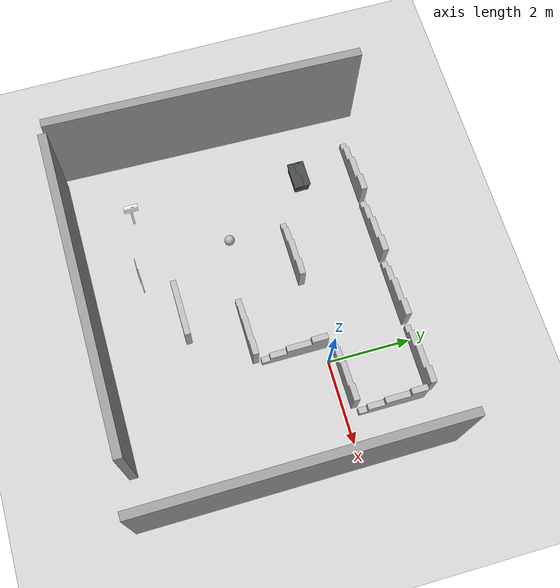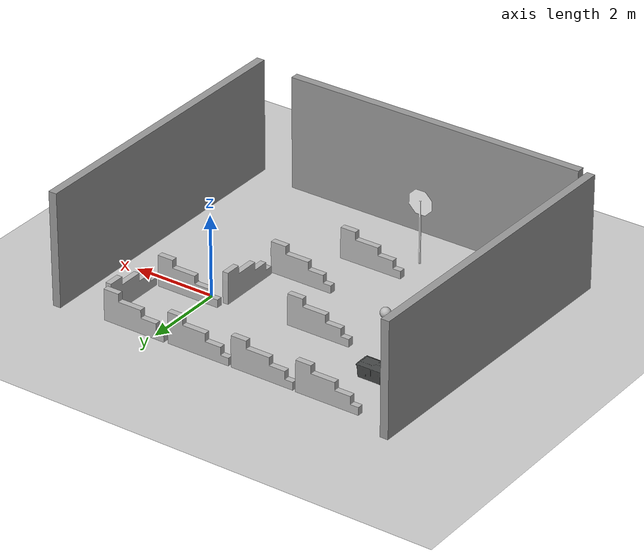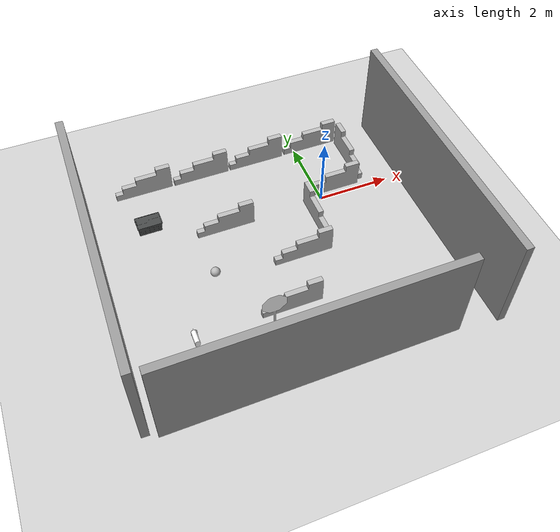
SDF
<sdf version="1.6">
 <world name="default">
  <light name="sun" type="directional">
   <pose>0 0 10 0 -0 0</pose>
   <diffuse>0.8 0.8 0.8 1</diffuse>
   <specular>0.1 0.1 0.1 1</specular>
   <attenuation>
    <range>1000</range>
    <constant>0.9</constant>
    <linear>0.01</linear>
    <quadratic>0.001</quadratic>
   </attenuation>
   <direction>-0.5 0.5 -1</direction>
  </light>
  <model name="ground_plane">
   <static>1</static>
   <link name="link">
    <collision name="collision">
     <geometry><plane><normal>0 0 1</normal><size>100 100</size></plane></geometry>
     <surface><friction><ode><mu>100</mu><mu2>50</mu2></ode></friction></surface>
    </collision>
    <visual name="visual">
     <cast_shadows>0</cast_shadows>
     <geometry><plane><normal>0 0 1</normal><size>100 100</size></plane></geometry>
     <material>
      <script><uri>file://media/materials/scripts/gazebo.material</uri><name>Gazebo/Grey</name></script>
     </material>
    </visual>
   </link>
  </model>
  <physics name="default_physics" default="0" type="ode">
   <real_time_update_rate>1000</real_time_update_rate>
   <max_step_size>0.001</max_step_size>
   <real_time_factor>1</real_time_factor>
   <ode>
    <solver>
     <type>quick</type>
     <iters>150</iters>
     <precon_iters>0</precon_iters>
     <sor>1.4</sor>
     <use_dynamic_moi_rescaling>1</use_dynamic_moi_rescaling>
    </solver>
    <constraints>
     <cfm>1e-05</cfm>
     <erp>0.2</erp>
     <contact_max_correcting_vel>2000</contact_max_correcting_vel>
     <contact_surface_layer>0.01</contact_surface_layer>
    </constraints>
   </ode>
  </physics>
  <scene><ambient>0.4 0.4 0.4 1</ambient><background>0.7 0.7 0.7 1</background><shadows>1</shadows></scene>
  <gravity>0 0 -9.8</gravity>
  <magnetic_field>6e-06 2.3e-05 -4.2e-05</magnetic_field>
  <atmosphere type="adiabatic"/>
  <spherical_coordinates>
   <surface_model>EARTH_WGS84</surface_model>
   <latitude_deg>0</latitude_deg>
   <longitude_deg>0</longitude_deg>
   <elevation>0</elevation>
   <heading_deg>0</heading_deg>
  </spherical_coordinates>
  <model name="block_wall">
   <pose>-2.66762 -0.046845 0.30924 0 -0 0</pose>
   <static>1</static>
   <link name="blocks">
    <collision name="collision">
     <geometry>
      <mesh><uri>model://drc_practice_block_wall/meshes/block_wall.dae</uri><scale>1 1 1</scale></mesh>
     </geometry>
     <surface>
      <bounce><restitution_coefficient>0</restitution_coefficient><threshold>100000</threshold></bounce>
      <friction><ode><mu>100</mu><mu2>50</mu2></ode></friction>
      <contact>
       <ode><soft_cfm>0</soft_cfm><soft_erp>0.2</soft_erp><max_vel>0</max_vel><min_depth>0</min_depth></ode>
      </contact>
     </surface>
    </collision>
    <visual name="visual">
     <geometry>
      <mesh><uri>model://drc_practice_block_wall/meshes/block_wall.dae</uri><scale>1 1 1</scale></mesh>
     </geometry>
    </visual>
   </link>
  </model>
  <model name="block_wall_0">
   <pose>-2.70173 2.0152 0.30924 0 -0 0</pose>
   <static>1</static>
   <link name="blocks">
    <collision name="collision">
     <geometry>
      <mesh><uri>model://drc_practice_block_wall/meshes/block_wall.dae</uri><scale>1 1 1</scale></mesh>
     </geometry>
     <surface>
      <bounce><restitution_coefficient>0</restitution_coefficient><threshold>100000</threshold></bounce>
      <friction><ode><mu>100</mu><mu2>50</mu2></ode></friction>
      <contact>
       <ode><soft_cfm>0</soft_cfm><soft_erp>0.2</soft_erp><max_vel>0</max_vel><min_depth>0</min_depth></ode>
      </contact>
     </surface>
    </collision>
    <visual name="visual">
     <geometry>
      <mesh><uri>model://drc_practice_block_wall/meshes/block_wall.dae</uri><scale>1 1 1</scale></mesh>
     </geometry>
    </visual>
   </link>
  </model>
  <model name="block_wall_1">
   <pose>-1.04917 2.0152 0.30924 0 -0 0</pose>
   <static>1</static>
   <link name="blocks">
    <collision name="collision">
     <geometry>
      <mesh><uri>model://drc_practice_block_wall/meshes/block_wall.dae</uri><scale>1 1 1</scale></mesh>
     </geometry>
     <surface>
      <bounce><restitution_coefficient>0</restitution_coefficient><threshold>100000</threshold></bounce>
      <friction><ode><mu>100</mu><mu2>50</mu2></ode></friction>
      <contact>
       <ode><soft_cfm>0</soft_cfm><soft_erp>0.2</soft_erp><max_vel>0</max_vel><min_depth>0</min_depth></ode>
      </contact>
     </surface>
    </collision>
    <visual name="visual">
     <geometry>
      <mesh><uri>model://drc_practice_block_wall/meshes/block_wall.dae</uri><scale>1 1 1</scale></mesh>
     </geometry>
    </visual>
   </link>
  </model>
  <model name="block_wall_2">
   <pose>0.627625 2.03818 0.30924 0 -0 0</pose>
   <static>1</static>
   <link name="blocks">
    <collision name="collision">
     <geometry>
      <mesh><uri>model://drc_practice_block_wall/meshes/block_wall.dae</uri><scale>1 1 1</scale></mesh>
     </geometry>
     <surface>
      <bounce><restitution_coefficient>0</restitution_coefficient><threshold>100000</threshold></bounce>
      <friction><ode><mu>100</mu><mu2>50</mu2></ode></friction>
      <contact>
       <ode><soft_cfm>0</soft_cfm><soft_erp>0.2</soft_erp><max_vel>0</max_vel><min_depth>0</min_depth></ode>
      </contact>
     </surface>
    </collision>
    <visual name="visual">
     <geometry>
      <mesh><uri>model://drc_practice_block_wall/meshes/block_wall.dae</uri><scale>1 1 1</scale></mesh>
     </geometry>
    </visual>
   </link>
  </model>
  <model name="block_wall_3">
   <pose>1.32556 1.23341 0.30924 0 -0 1.57115</pose>
   <static>1</static>
   <link name="blocks">
    <collision name="collision">
     <geometry>
      <mesh><uri>model://drc_practice_block_wall/meshes/block_wall.dae</uri><scale>1 1 1</scale></mesh>
     </geometry>
     <surface>
      <bounce><restitution_coefficient>0</restitution_coefficient><threshold>100000</threshold></bounce>
      <friction><ode><mu>100</mu><mu2>50</mu2></ode></friction>
      <contact>
       <ode><soft_cfm>0</soft_cfm><soft_erp>0.2</soft_erp><max_vel>0</max_vel><min_depth>0</min_depth></ode>
      </contact>
     </surface>
    </collision>
    <visual name="visual">
     <geometry>
      <mesh><uri>model://drc_practice_block_wall/meshes/block_wall.dae</uri><scale>1 1 1</scale></mesh>
     </geometry>
    </visual>
   </link>
  </model>
  <model name="block_wall_4">
   <pose>0.550133 0.24396 0.30924 0 -0 0</pose>
   <static>1</static>
   <link name="blocks">
    <collision name="collision">
     <geometry>
      <mesh><uri>model://drc_practice_block_wall/meshes/block_wall.dae</uri><scale>1 1 1</scale></mesh>
     </geometry>
     <surface>
      <bounce><restitution_coefficient>0</restitution_coefficient><threshold>100000</threshold></bounce>
      <friction><ode><mu>100</mu><mu2>50</mu2></ode></friction>
      <contact>
       <ode><soft_cfm>0</soft_cfm><soft_erp>0.2</soft_erp><max_vel>0</max_vel><min_depth>0</min_depth></ode>
      </contact>
     </surface>
    </collision>
    <visual name="visual">
     <geometry>
      <mesh><uri>model://drc_practice_block_wall/meshes/block_wall.dae</uri><scale>1 1 1</scale></mesh>
     </geometry>
    </visual>
   </link>
  </model>
  <model name="block_wall_5">
   <pose>-1.08718 -1.63895 0.30924 0 -0 0</pose>
   <static>1</static>
   <link name="blocks">
    <collision name="collision">
     <geometry>
      <mesh><uri>model://drc_practice_block_wall/meshes/block_wall.dae</uri><scale>1 1 1</scale></mesh>
     </geometry>
     <surface>
      <bounce><restitution_coefficient>0</restitution_coefficient><threshold>100000</threshold></bounce>
      <friction><ode><mu>100</mu><mu2>50</mu2></ode></friction>
      <contact>
       <ode><soft_cfm>0</soft_cfm><soft_erp>0.2</soft_erp><max_vel>0</max_vel><min_depth>0</min_depth></ode>
      </contact>
     </surface>
    </collision>
    <visual name="visual">
     <geometry>
      <mesh><uri>model://drc_practice_block_wall/meshes/block_wall.dae</uri><scale>1 1 1</scale></mesh>
     </geometry>
    </visual>
   </link>
  </model>
  <model name="block_wall_6">
   <pose>-0.427056 -0.570401 0.30924 0 -0 1.5723</pose>
   <static>1</static>
   <link name="blocks">
    <collision name="collision">
     <geometry>
      <mesh><uri>model://drc_practice_block_wall/meshes/block_wall.dae</uri><scale>1 1 1</scale></mesh>
     </geometry>
     <surface>
      <bounce><restitution_coefficient>0</restitution_coefficient><threshold>100000</threshold></bounce>
      <friction><ode><mu>100</mu><mu2>50</mu2></ode></friction>
      <contact>
       <ode><soft_cfm>0</soft_cfm><soft_erp>0.2</soft_erp><max_vel>0</max_vel><min_depth>0</min_depth></ode>
      </contact>
     </surface>
    </collision>
    <visual name="visual">
     <geometry>
      <mesh><uri>model://drc_practice_block_wall/meshes/block_wall.dae</uri><scale>1 1 1</scale></mesh>
     </geometry>
    </visual>
   </link>
  </model>
  <model name="block_wall_7">
   <pose>-1.96564 -3.01521 0.30924 0 -0 0</pose>
   <static>1</static>
   <link name="blocks">
    <collision name="collision">
     <geometry>
      <mesh><uri>model://drc_practice_block_wall/meshes/block_wall.dae</uri><scale>1 1 1</scale></mesh>
     </geometry>
     <surface>
      <bounce><restitution_coefficient>0</restitution_coefficient><threshold>100000</threshold></bounce>
      <friction><ode><mu>100</mu><mu2>50</mu2></ode></friction>
      <contact>
       <ode><soft_cfm>0</soft_cfm><soft_erp>0.2</soft_erp><max_vel>0</max_vel><min_depth>0</min_depth></ode>
      </contact>
     </surface>
    </collision>
    <visual name="visual">
     <geometry>
      <mesh><uri>model://drc_practice_block_wall/meshes/block_wall.dae</uri><scale>1 1 1</scale></mesh>
     </geometry>
    </visual>
   </link>
  </model>
  <model name="block_wall_8">
   <pose>-4.36037 2.02738 0.30924 0 -0 0</pose>
   <static>1</static>
   <link name="blocks">
    <collision name="collision">
     <geometry>
      <mesh><uri>model://drc_practice_block_wall/meshes/block_wall.dae</uri><scale>1 1 1</scale></mesh>
     </geometry>
     <surface>
      <bounce><restitution_coefficient>0</restitution_coefficient><threshold>100000</threshold></bounce>
      <friction><ode><mu>100</mu><mu2>50</mu2></ode></friction>
      <contact>
       <ode><soft_cfm>0</soft_cfm><soft_erp>0.2</soft_erp><max_vel>0</max_vel><min_depth>0</min_depth></ode>
      </contact>
     </surface>
    </collision>
    <visual name="visual">
     <geometry>
      <mesh><uri>model://drc_practice_block_wall/meshes/block_wall.dae</uri><scale>1 1 1</scale></mesh>
     </geometry>
    </visual>
   </link>
  </model>
  <model name="frc2016_ball">
   <pose>-3.56249 -1.41984 0.127 0 -0 0</pose>
   <link name="link">
    <inertial>
     <mass>0.213</mass>
     <inertia>
      <ixx>0.00322667</ixx>
      <ixy>0</ixy>
      <ixz>0</ixz>
      <iyy>0.00322667</iyy>
      <iyz>0</iyz>
      <izz>0.00322667</izz>
     </inertia>
    </inertial>
    <visual name="visual"><geometry><sphere><radius>0.127</radius></sphere></geometry></visual>
    <collision name="collision">
     <geometry><sphere><radius>0.127</radius></sphere></geometry>
     <surface>
      <bounce><restitution_coefficient>0.15937</restitution_coefficient><threshold>0</threshold></bounce>
      <contact><ode><max_vel>100</max_vel><min_depth>0.001</min_depth></ode></contact>
     </surface>
    </collision>
   </link>
  </model>
  <model name="grey_wall">
   <static>1</static>
   <link name="link">
    <pose>0 0 1.4 0 -0 0</pose>
    <collision name="collision"><geometry><box><size>7.5 0.2 2.8</size></box></geometry></collision>
    <visual name="visual">
     <cast_shadows>0</cast_shadows>
     <geometry><box><size>7.5 0.2 2.8</size></box></geometry>
     <material>
      <script>
       <uri>model://grey_wall/materials/scripts</uri>
       <uri>model://grey_wall/materials/textures</uri>
       <name>vrc/grey_wall</name>
      </script>
     </material>
    </visual>
   </link>
   <pose>-6.29542 -1.24159 0 0 -0 1.54899</pose>
  </model>
  <model name="grey_wall_0">
   <static>1</static>
   <link name="link">
    <pose>0 0 1.4 0 -0 0</pose>
    <collision name="collision"><geometry><box><size>7.5 0.2 2.8</size></box></geometry></collision>
    <visual name="visual">
     <cast_shadows>0</cast_shadows>
     <geometry><box><size>7.5 0.2 2.8</size></box></geometry>
     <material>
      <script>
       <uri>model://grey_wall/materials/scripts</uri>
       <uri>model://grey_wall/materials/textures</uri>
       <name>vrc/grey_wall</name>
      </script>
     </material>
    </visual>
   </link>
   <pose>-2.35784 -5.0137 0 0 -0 0</pose>
  </model>
  <model name="Mailbox">
   <link name="link">
    <collision name="collision">
     <geometry><mesh><uri>model://mailbox/meshes/mailbox.dae</uri><scale>1 1 1</scale></mesh></geometry>
    </collision>
    <visual name="visual">
     <geometry><mesh><uri>model://mailbox/meshes/mailbox.dae</uri><scale>1 1 1</scale></mesh></geometry>
     <material>
      <script>
       <uri>model://mailbox/materials/scripts</uri>
       <uri>model://mailbox/materials/textures</uri>
       <name>Mailbox/Diffuse</name>
      </script>
     </material>
    </visual>
    <inertial>
     <inertia><ixx>1</ixx><ixy>0</ixy><ixz>0</ixz><iyy>1</iyy><iyz>0</iyz><izz>1</izz></inertia>
     <mass>1</mass>
    </inertial>
   </link>
   <pose>-4.70009 -3.55261 0 -3e-06 -4e-06 -0</pose>
  </model>
  <model name="Stop Sign">
   <link name="link">
    <collision name="collision">
     <geometry><mesh><uri>model://stop_sign/meshes/stop_sign.dae</uri><scale>1 1 1</scale></mesh></geometry>
    </collision>
    <visual name="visual">
     <geometry><mesh><uri>model://stop_sign/meshes/stop_sign.dae</uri><scale>1 1 1</scale></mesh></geometry>
     <material>
      <script>
       <uri>model://stop_sign/materials/scripts</uri>
       <uri>model://stop_sign/materials/textures</uri>
       <name>StopSign/Diffuse</name>
      </script>
     </material>
    </visual>
    <inertial>
     <inertia><ixx>1</ixx><ixy>0</ixy><ixz>0</ixz><iyy>1</iyy><iyz>0</iyz><izz>1</izz></inertia>
     <mass>1</mass>
    </inertial>
   </link>
   <pose>-2.86481 -3.73677 0 2e-06 3e-06 0</pose>
  </model>
  <model name="grey_tote">
   <link name="link">
    <inertial>
     <pose>0 0 0.14155 0 -0 0</pose>
     <mass>3.53802</mass>
     <inertia>
      <ixx>0.0688358</ixx>
      <ixy>0</ixy>
      <ixz>0</ixz>
      <iyy>0.139596</iyy>
      <iyz>0</iyz>
      <izz>0.155909</izz>
     </inertia>
    </inertial>
    <collision name="lid">
     <pose>0 0 0.28958 0 -0 0</pose>
     <geometry><box><size>0.67768 0.41298 0.01588</size></box></geometry>
    </collision>
    <collision name="lid_lip_1">
     <pose>0 0.20063 0.3048 0 -0 0</pose>
     <geometry><box><size>0.65068 0.0105 0.0127</size></box></geometry>
    </collision>
    <collision name="lid_lip_2">
     <pose>0 -0.20063 0.3048 0 -0 0</pose>
     <geometry><box><size>0.65068 0.0105 0.0127</size></box></geometry>
    </collision>
    <collision name="lid_lip_3">
     <pose>0.32585 0 0.3048 0 -0 0</pose>
     <geometry><box><size>0.02602 0.31202 0.0127</size></box></geometry>
    </collision>
    <collision name="lid_lip_4">
     <pose>-0.32585 0 0.3048 0 -0 0</pose>
     <geometry><box><size>0.02602 0.31202 0.0127</size></box></geometry>
    </collision>
    <collision name="side_wall_1">
     <pose>0 -0.18 0.14155 0.061147 -0 0</pose>
     <geometry><box><size>0.58404 0.02602 0.283099</size></box></geometry>
    </collision>
    <collision name="side_wall_2">
     <pose>0 0.18 0.14155 -0.061147 0 0</pose>
     <geometry><box><size>0.58404 0.02602 0.283099</size></box></geometry>
    </collision>
    <collision name="side_wall_3">
     <pose>0.305 0 0.14155 0 0.061147 0</pose>
     <geometry><box><size>0.02602 0.33046 0.283099</size></box></geometry>
    </collision>
    <collision name="side_wall_4">
     <pose>-0.305 0 0.14155 0 -0.061147 0</pose>
     <geometry><box><size>0.02602 0.33046 0.283099</size></box></geometry>
    </collision>
    <collision name="bottom">
     <pose>0 0 0.01 0 -0 0</pose>
     <geometry><box><size>0.58404 0.33046 0.02</size></box></geometry>
    </collision>
    <collision name="corner_1">
     <pose>0.30202 -0.175 0.14155 0.061147 0.061147 -0</pose>
     <geometry><cylinder><radius>0.01268</radius><length>0.283099</length></cylinder></geometry>
    </collision>
    <collision name="corner_2">
     <pose>-0.30202 -0.175 0.14155 0.061147 -0.061147 0</pose>
     <geometry><cylinder><radius>0.01268</radius><length>0.283099</length></cylinder></geometry>
    </collision>
    <collision name="corner_3">
     <pose>-0.30202 0.175 0.14155 -0.061147 -0.061147 -0</pose>
     <geometry><cylinder><radius>0.01268</radius><length>0.283099</length></cylinder></geometry>
    </collision>
    <collision name="corner_4">
     <pose>0.30202 0.175 0.14155 -0.061147 0.061147 0</pose>
     <geometry><cylinder><radius>0.01268</radius><length>0.283099</length></cylinder></geometry>
    </collision>
    <visual name="visual">
     <geometry><mesh><uri>model://grey_tote/meshes/tote.dae</uri><scale>1 1 1</scale></mesh></geometry>
    </visual>
   </link>
   <pose>-4.72607 0.691016 0.000566 0 -0 0</pose>
  </model>
  <model name="grey_wall_1">
   <static>1</static>
   <link name="link">
    <pose>0 0 1.4 0 -0 0</pose>
    <collision name="collision"><geometry><box><size>7.5 0.2 2.8</size></box></geometry></collision>
    <visual name="visual">
     <cast_shadows>0</cast_shadows>
     <geometry><box><size>7.5 0.2 2.8</size></box></geometry>
     <material>
      <script>
       <uri>model://grey_wall/materials/scripts</uri>
       <uri>model://grey_wall/materials/textures</uri>
       <name>vrc/grey_wall</name>
      </script>
     </material>
    </visual>
   </link>
   <pose>2.46225 -1.49053 0 0 -0 1.57478</pose>
  </model>
 </world>
</sdf>
